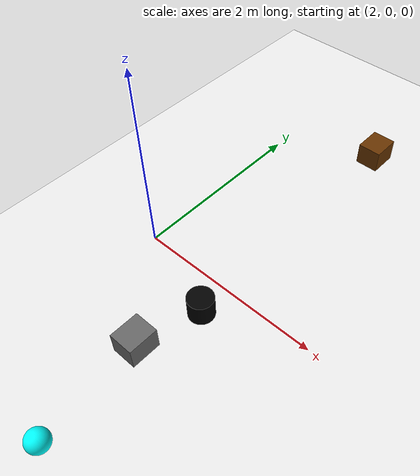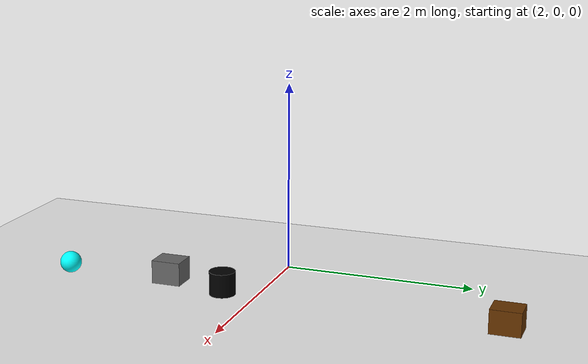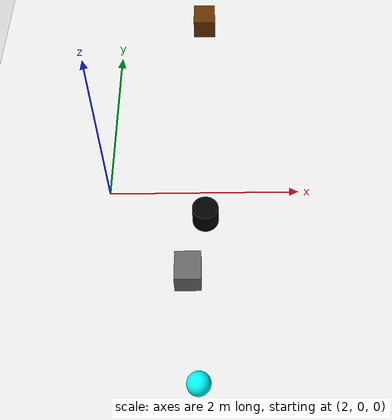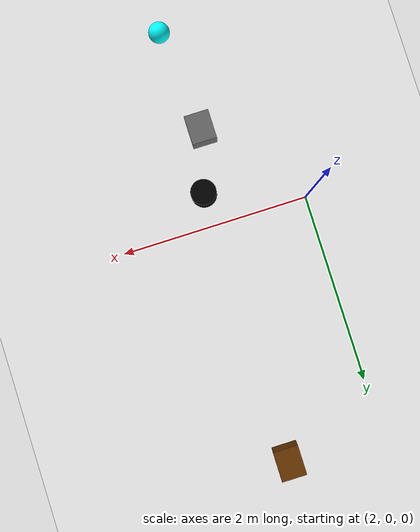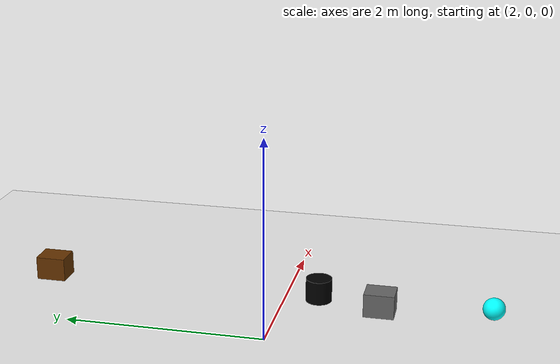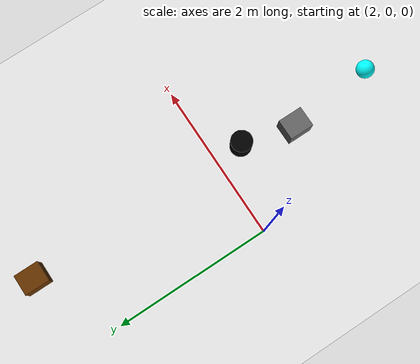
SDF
<sdf version="1.6">
 <world name="default">
  <model name="ground_plane">
   <static>1</static>
   <link name="link">
    <collision name="collision">
     <geometry><plane><normal>0 0 1</normal><size>100 100</size></plane></geometry>
     <surface>
      <contact><collide_bitmask>65535</collide_bitmask></contact>
      <friction><ode><mu>100</mu><mu2>50</mu2></ode></friction>
     </surface>
    </collision>
    <visual name="visual">
     <cast_shadows>0</cast_shadows>
     <geometry><plane><normal>0 0 1</normal><size>100 100</size></plane></geometry>
     <material>
      <script><uri>file://media/materials/scripts/gazebo.material</uri><name>Gazebo/White</name></script>
     </material>
    </visual>
   </link>
  </model>
  <model name="cuboid">
   <link name="link_1">
    <inertial>
     <mass>1</mass>
     <inertia>
      <ixx>0.166667</ixx>
      <ixy>0</ixy>
      <ixz>0</ixz>
      <iyy>0.166667</iyy>
      <iyz>0</iyz>
      <izz>0.166667</izz>
     </inertia>
    </inertial>
    <pose>4e-06 -3e-06 0 0 -0 0</pose>
    <visual name="visual">
     <geometry>
      <mesh><uri>/home/pranavkdas/simulation_ws/src/hexbot/shapes/cuboid.stl</uri><scale>1 1 1</scale></mesh>
     </geometry>
     <material>
      <lighting>1</lighting>
      <ambient>0.4 0.2 0 1</ambient>
      <diffuse>0.4 0.2 0 1</diffuse>
      <specular>0.4 0.2 0 1</specular>
      <emissive>0.4 0.2 0 1</emissive>
     </material>
    </visual>
    <collision name="collision">
     <geometry>
      <mesh><uri>/home/pranavkdas/simulation_ws/src/hexbot/shapes/cuboid.stl</uri><scale>1 1 1</scale></mesh>
     </geometry>
     <surface>
      <friction>
       <ode><mu>1</mu><mu2>1</mu2><fdir1>0 0 0</fdir1><slip1>0</slip1><slip2>0</slip2></ode>
       <torsional>
        <coefficient>1</coefficient>
        <patch_radius>0</patch_radius>
        <surface_radius>0</surface_radius>
        <use_patch_radius>1</use_patch_radius>
        <ode><slip>0</slip></ode>
       </torsional>
      </friction>
      <bounce><restitution_coefficient>0</restitution_coefficient><threshold>1e+06</threshold></bounce>
      <contact>
       <collide_without_contact>0</collide_without_contact>
       <collide_without_contact_bitmask>1</collide_without_contact_bitmask>
       <collide_bitmask>1</collide_bitmask>
       <ode>
        <soft_cfm>0</soft_cfm>
        <soft_erp>0.2</soft_erp>
        <kp>1e+13</kp>
        <kd>1</kd>
        <max_vel>0.01</max_vel>
        <min_depth>0</min_depth>
       </ode>
       <bullet>
        <split_impulse>1</split_impulse>
        <split_impulse_penetration_threshold>-0.01</split_impulse_penetration_threshold>
        <soft_cfm>0</soft_cfm>
        <soft_erp>0.2</soft_erp>
        <kp>1e+13</kp>
        <kd>1</kd>
       </bullet>
      </contact>
     </surface>
    </collision>
   </link>
   <static>0</static>
   <pose>3.00093 2.53255 -7e-06 4e-06 -4e-06 0</pose>
  </model>
  <model name="sphere">
   <link name="link_4">
    <inertial>
     <mass>1</mass>
     <inertia>
      <ixx>0.166667</ixx>
      <ixy>0</ixy>
      <ixz>0</ixz>
      <iyy>0.166667</iyy>
      <iyz>0</iyz>
      <izz>0.166667</izz>
     </inertia>
    </inertial>
    <pose>-4e-06 0 0 0 -0 0</pose>
    <visual name="visual">
     <geometry>
      <mesh><uri>/home/pranavkdas/simulation_ws/src/hexbot/shapes/sphere.stl</uri><scale>1 1 1</scale></mesh>
     </geometry>
     <material>
      <lighting>1</lighting>
      <ambient>0 1 1 1</ambient>
      <diffuse>0 1 1 1</diffuse>
      <specular>0 1 1 1</specular>
      <emissive>0 1 1 1</emissive>
     </material>
    </visual>
    <collision name="collision">
     <geometry>
      <mesh><uri>/home/pranavkdas/simulation_ws/src/hexbot/shapes/sphere.stl</uri><scale>1 1 1</scale></mesh>
     </geometry>
     <surface>
      <friction>
       <ode><mu>1</mu><mu2>1</mu2><fdir1>0 0 0</fdir1><slip1>0</slip1><slip2>0</slip2></ode>
       <torsional>
        <coefficient>1</coefficient>
        <patch_radius>0</patch_radius>
        <surface_radius>0</surface_radius>
        <use_patch_radius>1</use_patch_radius>
        <ode><slip>0</slip></ode>
       </torsional>
      </friction>
      <bounce><restitution_coefficient>0</restitution_coefficient><threshold>1e+06</threshold></bounce>
      <contact>
       <collide_without_contact>0</collide_without_contact>
       <collide_without_contact_bitmask>1</collide_without_contact_bitmask>
       <collide_bitmask>1</collide_bitmask>
       <ode>
        <soft_cfm>0</soft_cfm>
        <soft_erp>0.2</soft_erp>
        <kp>1e+13</kp>
        <kd>1</kd>
        <max_vel>0.01</max_vel>
        <min_depth>0</min_depth>
       </ode>
       <bullet>
        <split_impulse>1</split_impulse>
        <split_impulse_penetration_threshold>-0.01</split_impulse_penetration_threshold>
        <soft_cfm>0</soft_cfm>
        <soft_erp>0.2</soft_erp>
        <kp>1e+13</kp>
        <kd>1</kd>
       </bullet>
      </contact>
     </surface>
    </collision>
   </link>
   <static>0</static>
   <pose>2.95037 -2.11626 0.111289 -0.049067 -0.049066 0.016719</pose>
  </model>
  <model name="cylinder_black">
   <link name="link_0">
    <inertial>
     <mass>1</mass>
     <inertia>
      <ixx>0.166667</ixx>
      <ixy>0</ixy>
      <ixz>0</ixz>
      <iyy>0.166667</iyy>
      <iyz>0</iyz>
      <izz>0.166667</izz>
     </inertia>
    </inertial>
    <pose>-4e-06 0 -0 0 -0 0</pose>
    <visual name="visual">
     <geometry>
      <mesh><uri>/home/pranavkdas/simulation_ws/src/hexbot/shapes/cylinder.stl</uri><scale>1 1 1</scale></mesh>
     </geometry>
     <material>
      <lighting>1</lighting>
      <script><uri>__default__</uri><name>ModelPreview_9::link_0::visual_MATERIAL_</name></script>
      <ambient>0 0 0 1</ambient>
      <shader type="vertex"><normal_map>__default__</normal_map></shader>
      <diffuse>0 0 0 1</diffuse>
      <specular>0 0 0 1</specular>
      <emissive>0 0 0 1</emissive>
     </material>
    </visual>
    <collision name="collision">
     <geometry>
      <mesh><uri>/home/pranavkdas/simulation_ws/src/hexbot/shapes/cylinder.stl</uri><scale>1 1 1</scale></mesh>
     </geometry>
     <surface>
      <friction>
       <ode><mu>1</mu><mu2>1</mu2><fdir1>0 0 0</fdir1><slip1>0</slip1><slip2>0</slip2></ode>
       <torsional>
        <coefficient>1</coefficient>
        <patch_radius>0</patch_radius>
        <surface_radius>0</surface_radius>
        <use_patch_radius>1</use_patch_radius>
        <ode><slip>0</slip></ode>
       </torsional>
      </friction>
      <bounce><restitution_coefficient>0</restitution_coefficient><threshold>1e+06</threshold></bounce>
      <contact>
       <collide_without_contact>0</collide_without_contact>
       <collide_without_contact_bitmask>1</collide_without_contact_bitmask>
       <collide_bitmask>1</collide_bitmask>
       <ode>
        <soft_cfm>0</soft_cfm>
        <soft_erp>0.2</soft_erp>
        <kp>1e+13</kp>
        <kd>1</kd>
        <max_vel>0.01</max_vel>
        <min_depth>0</min_depth>
       </ode>
       <bullet>
        <split_impulse>1</split_impulse>
        <split_impulse_penetration_threshold>-0.01</split_impulse_penetration_threshold>
        <soft_cfm>0</soft_cfm>
        <soft_erp>0.2</soft_erp>
        <kp>1e+13</kp>
        <kd>1</kd>
       </bullet>
      </contact>
     </surface>
    </collision>
   </link>
   <static>0</static>
   <pose>3.00963 -0.347061 -0 1e-06 2e-06 0</pose>
  </model>
  <model name="cuboid_grey">
   <link name="link_1">
    <inertial>
     <mass>1</mass>
     <inertia>
      <ixx>0.166667</ixx>
      <ixy>0</ixy>
      <ixz>0</ixz>
      <iyy>0.166667</iyy>
      <iyz>0</iyz>
      <izz>0.166667</izz>
     </inertia>
    </inertial>
    <pose>4e-06 -3e-06 0 0 -0 0</pose>
    <visual name="visual">
     <geometry>
      <mesh><uri>/home/pranavkdas/simulation_ws/src/hexbot/shapes/cuboid.stl</uri><scale>1 1 1</scale></mesh>
     </geometry>
     <material>
      <lighting>1</lighting>
      <ambient>0.4 0.4 0.4 1</ambient>
      <diffuse>0.4 0.4 0.4 1</diffuse>
      <specular>0.4 0.4 0.4 1</specular>
      <emissive>0.4 0.4 0.4 1</emissive>
      <script><name>ModelPreview_12::link_1::visual_MATERIAL_</name><uri>__default__</uri></script>
      <shader type="vertex"><normal_map>__default__</normal_map></shader>
     </material>
    </visual>
    <collision name="collision">
     <geometry>
      <mesh><uri>/home/pranavkdas/simulation_ws/src/hexbot/shapes/cuboid.stl</uri><scale>1 1 1</scale></mesh>
     </geometry>
     <surface>
      <friction>
       <ode><mu>1</mu><mu2>1</mu2><fdir1>0 0 0</fdir1><slip1>0</slip1><slip2>0</slip2></ode>
       <torsional>
        <coefficient>1</coefficient>
        <patch_radius>0</patch_radius>
        <surface_radius>0</surface_radius>
        <use_patch_radius>1</use_patch_radius>
        <ode><slip>0</slip></ode>
       </torsional>
      </friction>
      <bounce><restitution_coefficient>0</restitution_coefficient><threshold>1e+06</threshold></bounce>
      <contact>
       <collide_without_contact>0</collide_without_contact>
       <collide_without_contact_bitmask>1</collide_without_contact_bitmask>
       <collide_bitmask>1</collide_bitmask>
       <ode>
        <soft_cfm>0</soft_cfm>
        <soft_erp>0.2</soft_erp>
        <kp>1e+13</kp>
        <kd>1</kd>
        <max_vel>0.01</max_vel>
        <min_depth>0</min_depth>
       </ode>
       <bullet>
        <split_impulse>1</split_impulse>
        <split_impulse_penetration_threshold>-0.01</split_impulse_penetration_threshold>
        <soft_cfm>0</soft_cfm>
        <soft_erp>0.2</soft_erp>
        <kp>1e+13</kp>
        <kd>1</kd>
       </bullet>
      </contact>
     </surface>
    </collision>
   </link>
   <static>0</static>
   <pose>2.8392 -0.999594 -7e-06 1e-06 -4e-06 0</pose>
  </model>
 </world>
</sdf>
